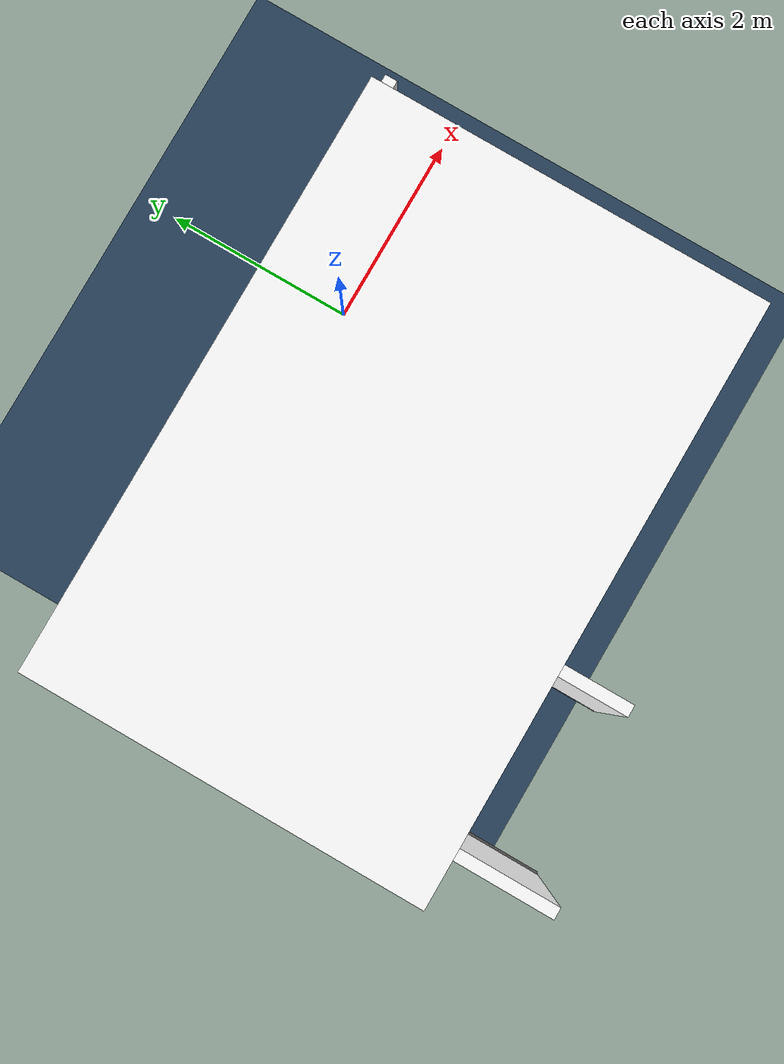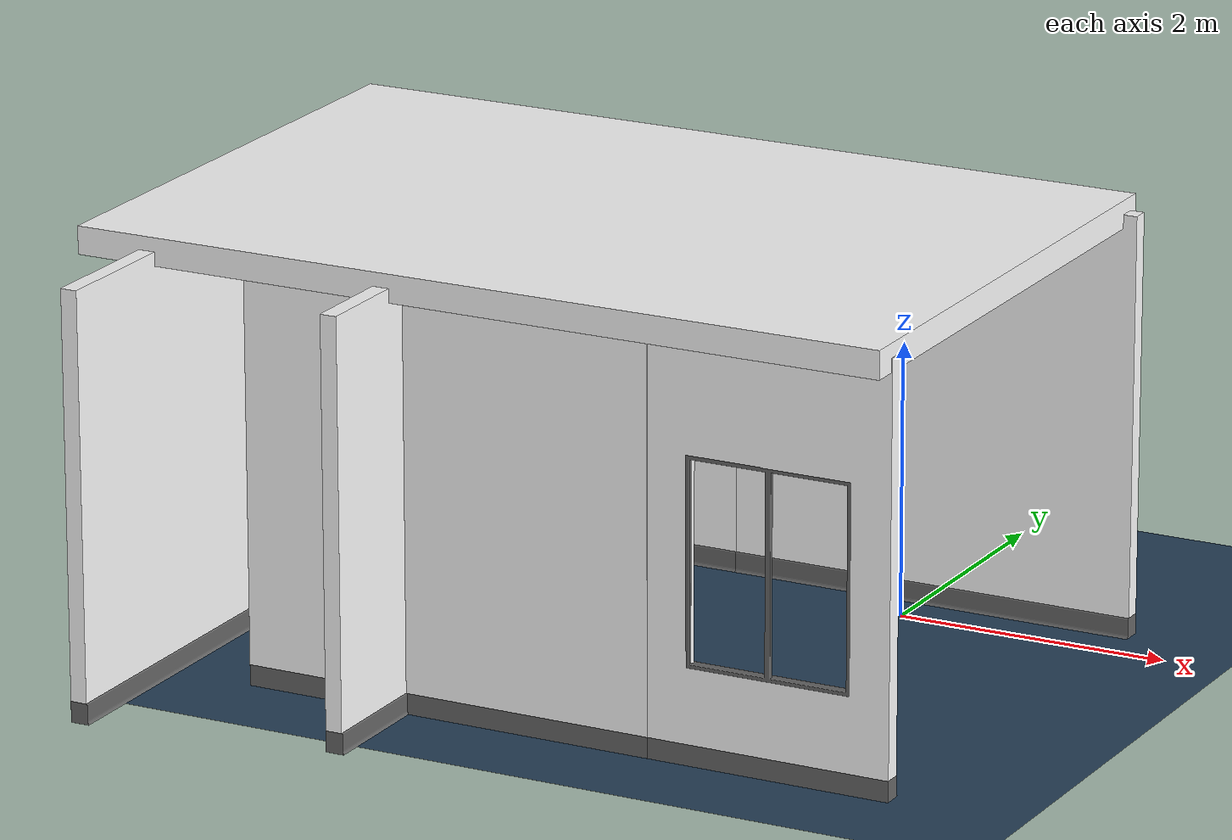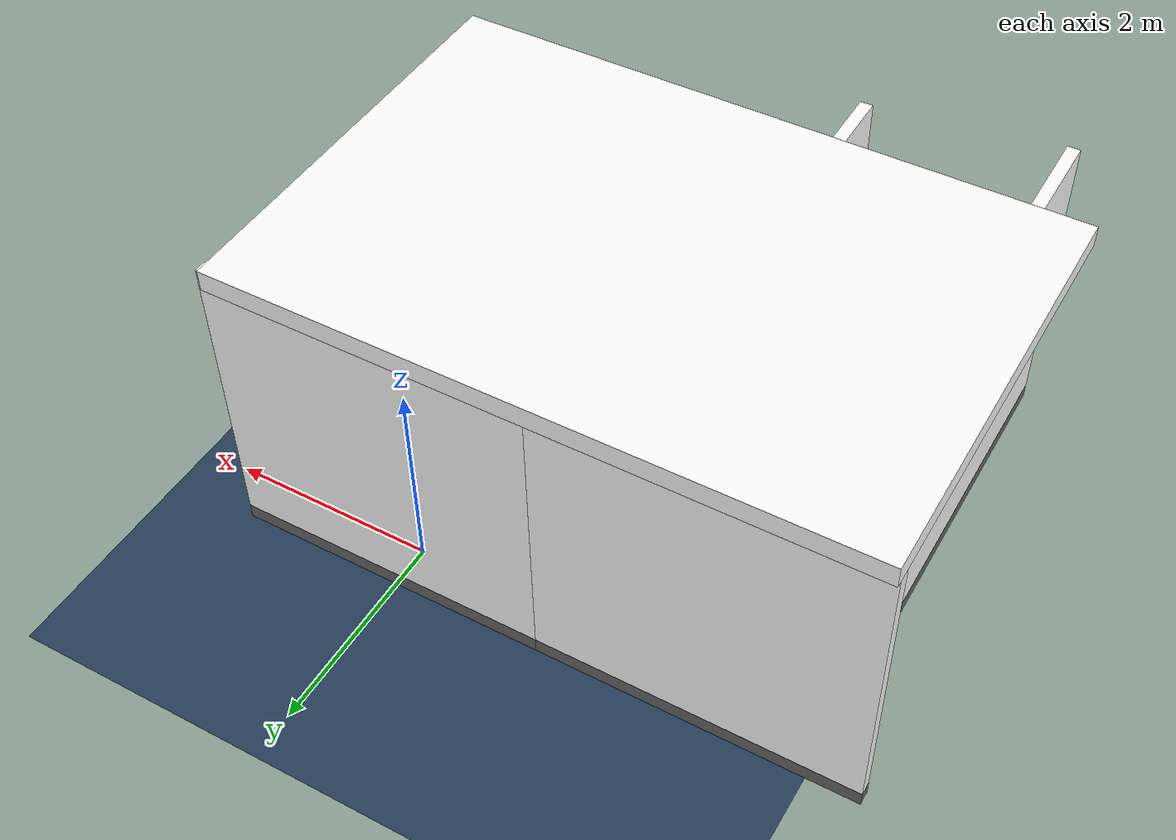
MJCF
<?xml version="1.0"?>
<mujoco model="room">
  <compiler angle="radian" meshdir="" texturedir=""/>
  <include file="../room/dependencies/room_asset.xml"/>
  <worldbody>
    <light class="Light" pos="0.4 -1 2.8" dir="-0.4 1 -3"/>
    <light class="Light" pos="0 0 2.8" dir="0 -1 -1"/>
    <geom contype="1" conaffinity="1" type="plane" pos="0 0 0" size="4 4 0.25" material="groundplane"/>
    <body>
      <include file="../room/dependencies/room_body.xml"/>
    </body>
  </worldbody>
</mujoco>

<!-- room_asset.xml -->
<mujocoinclude>
  <asset>
    <mesh name="Doorway_Top" file="../room/dependencies/meshes/Doorway_Top.stl" scale="0.01 0.01 0.01"/>
    <mesh name="Doorway_Bottom" file="../room/dependencies/meshes/Doorway_Bottom.stl" scale="0.01 0.01 0.01"/>
    <mesh name="Wall_Top" file="../room/dependencies/meshes/Wall_Top.stl" scale="0.01 0.01 0.01"/>
    <mesh name="Wall_Bottom" file="../room/dependencies/meshes/Wall_Bottom.stl" scale="0.01 0.01 0.01"/>
    <mesh name="Window_Top" file="../room/dependencies/meshes/Window_Top.stl" scale="0.01 0.01 0.01"/>
    <mesh name="Window_Bottom" file="../room/dependencies/meshes/Window_Bottom.stl" scale="0.01 0.01 0.01"/>
    <texture name="groundplane" type="2d" builtin="checker" rgb1=".2 .3 .4" rgb2=".1 .2 .3" width="200" height="200"/>
    <material name="groundplane" texture="groundplane" texrepeat="20 20"/>
  </asset>
  <default>
    <default class="Light">
      <light directional="false" castshadow="true" attenuation="0.05 0.05 0.05" cutoff="50" exponent="15" diffuse=".7 .7 .7" specular=".3 .3 .3"/>
    </default>
  </default>
</mujocoinclude>

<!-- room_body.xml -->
<mujocoinclude>
  <body name="Wall_01" pos="1.6 0.3 0">
    <geom type="mesh" rgba="1 1 1 1" mesh="Wall_Top" group="1" contype="0" conaffinity="0"/>
    <geom type="mesh" rgba="0.4 0.4 0.4 1" mesh="Wall_Bottom" group="1" contype="0" conaffinity="0"/>
  </body>
  <body name="Wall_02" pos="-3.318 -3.2 0" axisangle="0 0 1 3.141">
    <geom type="mesh" rgba="1 1 1 1" mesh="Wall_Top" group="1" contype="0" conaffinity="0"/>
    <geom type="mesh" rgba="0.4 0.4 0.4 1" mesh="Wall_Bottom" group="1" contype="0" conaffinity="0"/>
  </body>
  <body name="Wall_03" pos="-1.447 0.3 0">
    <geom type="mesh" rgba="1 1 1 1" mesh="Wall_Top" group="1" contype="0" conaffinity="0"/>
    <geom type="mesh" rgba="0.4 0.4 0.4 1" mesh="Wall_Bottom" group="1" contype="0" conaffinity="0"/>
  </body>
  <body name="Wall_04" pos="-2.1 -1.15 0" axisangle="0 0 1 1.571">
    <geom type="mesh" rgba="1 1 1 1" mesh="Wall_Top" group="1" contype="0" conaffinity="0"/>
    <geom type="mesh" rgba="0.4 0.4 0.4 1" mesh="Wall_Bottom" group="1" contype="0" conaffinity="0"/>
  </body>
  <body name="Wall_05" pos="-3.9 -1.45 0" axisangle="0 0 1 1.571">
    <geom type="mesh" rgba="1 1 1 1" mesh="Wall_Top" group="1" contype="0" conaffinity="0"/>
    <geom type="mesh" rgba="0.4 0.4 0.4 1" mesh="Wall_Bottom" group="1" contype="0" conaffinity="0"/>
  </body>
  <body name="Doorway_01" pos="-2.1 0.3 0" axisangle="0 0 1 1.571">
    <geom type="mesh" rgba="1 1 1 1" mesh="Doorway_Top" group="1" contype="0" conaffinity="0"/>
    <geom type="mesh" rgba="0.4 0.4 0.4 1" mesh="Doorway_Bottom" group="1" contype="0" conaffinity="0"/>
  </body>
  <body name="Window_02" pos="-3.9 0.3 0" axisangle="0 0 1 1.571">
    <geom type="mesh" rgba="1 1 1 1" mesh="Window_Top" group="1" contype="0" conaffinity="0"/>
    <geom type="mesh" rgba="0.4 0.4 0.4 1" mesh="Window_Bottom" group="1" contype="0" conaffinity="0"/>
  </body>
  <body name="Window_01" pos="-0.27 -3.2 0" axisangle="0 0 1 3.141">
    <geom type="mesh" rgba="1 1 1 1" mesh="Window_Top" group="1" contype="0" conaffinity="0"/>
    <geom type="mesh" rgba="0.4 0.4 0.4 1" mesh="Window_Bottom" group="1" contype="0" conaffinity="0"/>
  </body>
  <body name="Ceiling" pos="-1.5 -1.5 3.048" axisangle="0 0 1 1.571">
    <geom type="box" rgba="1 1 1 1" size="2 3 0.1" group="1" contype="0" conaffinity="0"/>
  </body>
</mujocoinclude>
